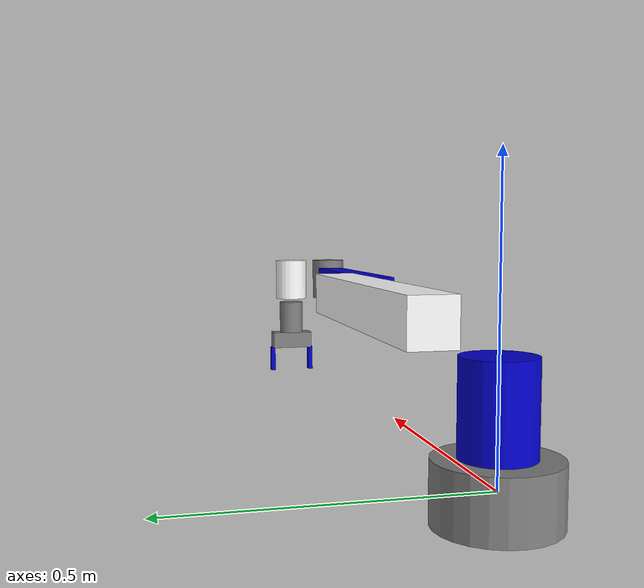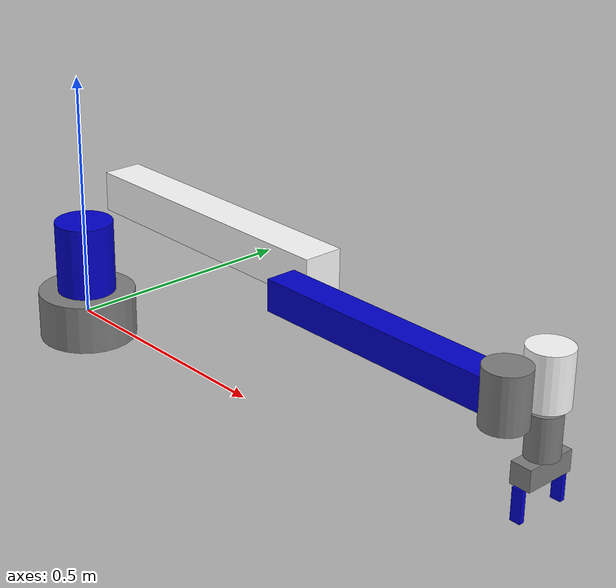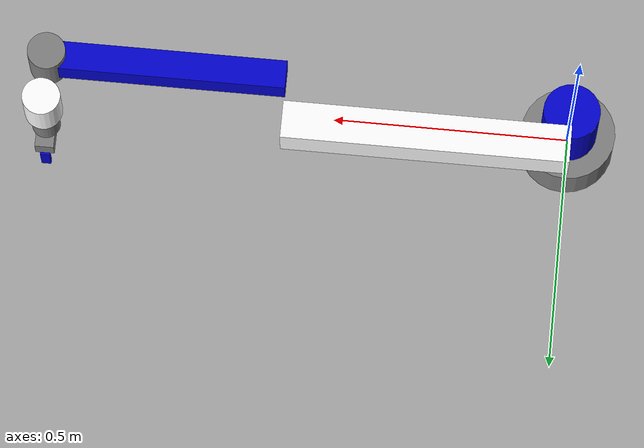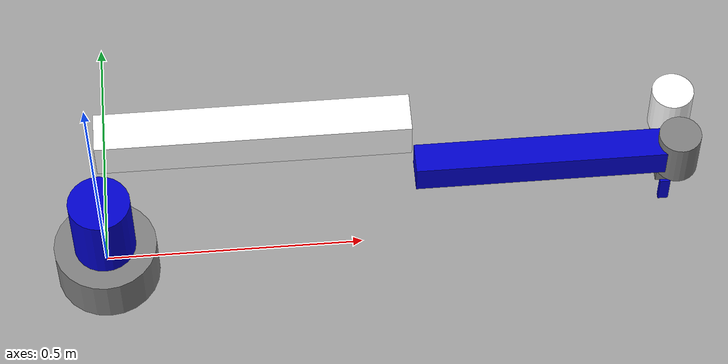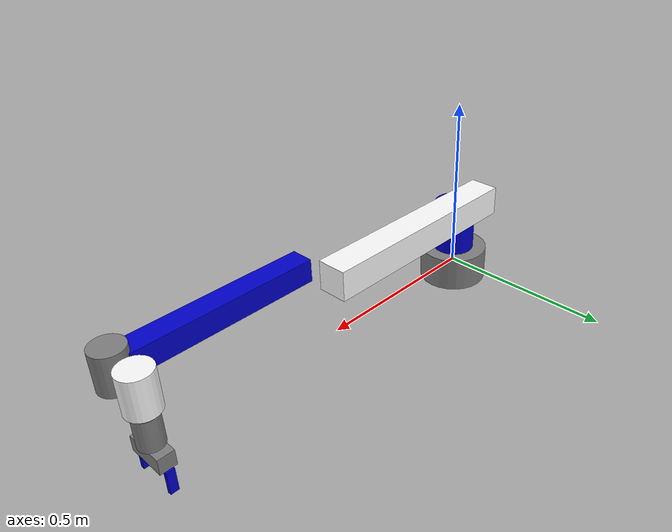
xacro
<?xml version="1.0"?>
<robot xmlns:xacro="http://www.ros.org/wiki/xacro" name="ur10_robot">

  <!-- World link -->
  <link name="world"/>

  <joint name="world_fixed" type="fixed">
    <parent link="world"/>
    <child link="base_link"/>
    <origin xyz="0 0 0" rpy="0 0 0"/>
  </joint>

  <!-- Base Link -->
  <link name="base_link">
    <visual>
      <geometry>
        <cylinder length="0.1" radius="0.1"/>
      </geometry>
      <material name="grey"><color rgba="0.5 0.5 0.5 1"/></material>
    </visual>
    <collision>
      <geometry>
        <cylinder length="0.1" radius="0.1"/>
      </geometry>
    </collision>
    <inertial>
      <mass value="4.0"/>
      <inertia ixx="0.01" ixy="0" ixz="0" iyy="0.01" iyz="0" izz="0.01"/>
    </inertial>
  </link>

  <!-- Shoulder Link -->
  <link name="shoulder_link">
    <visual>
      <geometry><cylinder length="0.2" radius="0.06"/></geometry>
      <material name="blue"><color rgba="0 0 0.8 1"/></material>
    </visual>
    <collision><geometry><cylinder length="0.2" radius="0.06"/></geometry></collision>
    <inertial><mass value="2.0"/><inertia ixx="0.005" ixy="0" ixz="0" iyy="0.005" iyz="0" izz="0.005"/></inertial>
  </link>

  <joint name="shoulder_pan_joint" type="revolute">
    <parent link="base_link"/>
    <child link="shoulder_link"/>
    <origin xyz="0 0 0.1" rpy="0 0 0"/>
    <axis xyz="0 0 1"/>
    <limit lower="-3.14" upper="3.14" effort="150.0" velocity="3.14"/>
  </joint>

  <!-- Upper Arm Link -->
  <link name="upper_arm_link">
    <visual>
      <origin xyz="0 0 0.3" rpy="0 0 0"/>
      <geometry><box size="0.08 0.08 0.6"/></geometry>
      <material name="white"><color rgba="1 1 1 1"/></material>
    </visual>
    <collision>
      <origin xyz="0 0 0.3" rpy="0 0 0"/>
      <geometry><box size="0.08 0.08 0.6"/></geometry>
    </collision>
    <inertial><mass value="5.0"/><inertia ixx="0.1" ixy="0" ixz="0" iyy="0.1" iyz="0" izz="0.05"/></inertial>
  </link>

  <joint name="shoulder_lift_joint" type="revolute">
    <parent link="shoulder_link"/>
    <child link="upper_arm_link"/>
    <origin xyz="0 0.1 0.15" rpy="0 1.5708 0"/>
    <axis xyz="0 1 0"/>
    <limit lower="-3.14" upper="3.14" effort="150.0" velocity="3.14"/>
  </joint>

  <!-- Forearm Link -->
  <link name="forearm_link">
    <visual>
      <origin xyz="0 0 0.25" rpy="0 0 0"/>
      <geometry><box size="0.06 0.06 0.5"/></geometry>
      <material name="blue"><color rgba="0 0 0.8 1"/></material>
    </visual>
    <collision>
      <origin xyz="0 0 0.25" rpy="0 0 0"/>
      <geometry><box size="0.06 0.06 0.5"/></geometry>
    </collision>
    <inertial><mass value="3.0"/><inertia ixx="0.05" ixy="0" ixz="0" iyy="0.05" iyz="0" izz="0.02"/></inertial>
  </link>

  <joint name="elbow_joint" type="revolute">
    <parent link="upper_arm_link"/>
    <child link="forearm_link"/>
    <origin xyz="0 -0.1 0.6" rpy="0 0 0"/>
    <axis xyz="0 1 0"/>
    <limit lower="-3.14" upper="3.14" effort="150.0" velocity="3.14"/>
  </joint>

  <!-- Wrist 1 -->
  <link name="wrist_1_link">
    <visual><geometry><cylinder length="0.1" radius="0.04"/></geometry><material name="grey"/></visual>
    <collision><geometry><cylinder length="0.1" radius="0.04"/></geometry></collision>
    <inertial><mass value="1.0"/><inertia ixx="0.001" ixy="0" ixz="0" iyy="0.001" iyz="0" izz="0.001"/></inertial>
  </link>

  <joint name="wrist_1_joint" type="revolute">
    <parent link="forearm_link"/>
    <child link="wrist_1_link"/>
    <origin xyz="0 0 0.5" rpy="0 1.5708 0"/>
    <axis xyz="0 1 0"/>
    <limit lower="-3.14" upper="3.14" effort="28.0" velocity="3.2"/>
  </joint>

  <!-- Wrist 2 -->
  <link name="wrist_2_link">
    <visual><geometry><cylinder length="0.1" radius="0.04"/></geometry><material name="white"/></visual>
    <collision><geometry><cylinder length="0.1" radius="0.04"/></geometry></collision>
    <inertial><mass value="1.0"/><inertia ixx="0.001" ixy="0" ixz="0" iyy="0.001" iyz="0" izz="0.001"/></inertial>
  </link>

  <joint name="wrist_2_joint" type="revolute">
    <parent link="wrist_1_link"/>
    <child link="wrist_2_link"/>
    <origin xyz="0 0.1 0" rpy="0 0 0"/>
    <axis xyz="0 0 1"/>
    <limit lower="-3.14" upper="3.14" effort="28.0" velocity="3.2"/>
  </joint>

  <!-- Wrist 3 -->
  <link name="wrist_3_link">
    <visual><geometry><cylinder length="0.08" radius="0.03"/></geometry><material name="grey"/></visual>
    <collision><geometry><cylinder length="0.08" radius="0.03"/></geometry></collision>
    <inertial><mass value="0.5"/><inertia ixx="0.0005" ixy="0" ixz="0" iyy="0.0005" iyz="0" izz="0.0005"/></inertial>
  </link>

  <joint name="wrist_3_joint" type="revolute">
    <parent link="wrist_2_link"/>
    <child link="wrist_3_link"/>
    <origin xyz="0 0 0.1" rpy="0 0 0"/>
    <axis xyz="0 1 0"/>
    <limit lower="-3.14" upper="3.14" effort="28.0" velocity="3.2"/>
  </joint>

  <!-- Gripper Base -->
  <link name="gripper_base">
    <visual><geometry><box size="0.04 0.1 0.04"/></geometry><material name="grey"/></visual>
    <collision><geometry><box size="0.04 0.1 0.04"/></geometry></collision>
    <inertial><mass value="0.2"/><inertia ixx="0.0001" ixy="0" ixz="0" iyy="0.0001" iyz="0" izz="0.0001"/></inertial>
  </link>

  <joint name="gripper_base_joint" type="fixed">
    <parent link="wrist_3_link"/>
    <child link="gripper_base"/>
    <origin xyz="0 0 0.06" rpy="0 0 0"/>
  </joint>

  <!-- Left Gripper Finger -->
  <link name="left_finger">
    <visual><origin xyz="0 0.02 0.03"/><geometry><box size="0.02 0.01 0.06"/></geometry><material name="blue"/></visual>
    <collision><origin xyz="0 0.02 0.03"/><geometry><box size="0.02 0.01 0.06"/></geometry></collision>
    <inertial><mass value="0.05"/><inertia ixx="0.00001" ixy="0" ixz="0" iyy="0.00001" iyz="0" izz="0.00001"/></inertial>
  </link>

  <joint name="left_finger_joint" type="prismatic">
    <parent link="gripper_base"/>
    <child link="left_finger"/>
    <origin xyz="0 0.03 0.02"/>
    <axis xyz="0 1 0"/>
    <limit lower="0.0" upper="0.04" effort="20.0" velocity="0.2"/>
  </joint>

  <!-- Right Gripper Finger -->
  <link name="right_finger">
    <visual><origin xyz="0 -0.02 0.03"/><geometry><box size="0.02 0.01 0.06"/></geometry><material name="blue"/></visual>
    <collision><origin xyz="0 -0.02 0.03"/><geometry><box size="0.02 0.01 0.06"/></geometry></collision>
    <inertial><mass value="0.05"/><inertia ixx="0.00001" ixy="0" ixz="0" iyy="0.00001" iyz="0" izz="0.00001"/></inertial>
  </link>

  <joint name="right_finger_joint" type="prismatic">
    <parent link="gripper_base"/>
    <child link="right_finger"/>
    <origin xyz="0 -0.03 0.02"/>
    <axis xyz="0 -1 0"/>
    <limit lower="0.0" upper="0.04" effort="20.0" velocity="0.2"/>
  </joint>

  <!-- ros2_control Interface -->
  <ros2_control name="IgnitionSystem" type="system">
    <hardware>
      <plugin>ign_ros2_control/IgnitionSystem</plugin>
    </hardware>
    <joint name="shoulder_pan_joint">
      <command_interface name="position"/>
      <state_interface name="position"/>
      <state_interface name="velocity"/>
    </joint>
    <joint name="shoulder_lift_joint">
      <command_interface name="position"/>
      <state_interface name="position"/>
      <state_interface name="velocity"/>
    </joint>
    <joint name="elbow_joint">
      <command_interface name="position"/>
      <state_interface name="position"/>
      <state_interface name="velocity"/>
    </joint>
    <joint name="wrist_1_joint">
      <command_interface name="position"/>
      <state_interface name="position"/>
      <state_interface name="velocity"/>
    </joint>
    <joint name="wrist_2_joint">
      <command_interface name="position"/>
      <state_interface name="position"/>
      <state_interface name="velocity"/>
    </joint>
    <joint name="wrist_3_joint">
      <command_interface name="position"/>
      <state_interface name="position"/>
      <state_interface name="velocity"/>
    </joint>
    <joint name="left_finger_joint">
      <command_interface name="position"/>
      <state_interface name="position"/>
    </joint>
    <joint name="right_finger_joint">
      <command_interface name="position"/>
      <state_interface name="position"/>
    </joint>
  </ros2_control>

</robot>
